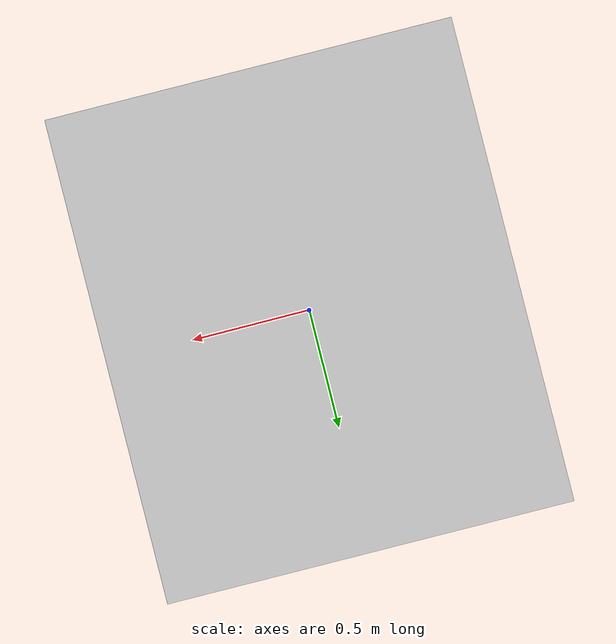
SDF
<?xml version="1.0" ?>
<sdf version="1.8">
  <world name="world_model">

    <physics name="1ms" type="ignored">
      <max_step_size>0.001</max_step_size>
      <real_time_factor>1.0</real_time_factor>
    </physics>
    <plugin
      filename="ignition-gazebo-physics-system"
      name="gz::sim::systems::Physics">
    </plugin>
    <plugin
      filename="ignition-gazebo-user-commands-system"
      name="gz::sim::systems::UserCommands">
    </plugin>
    <plugin
      filename="libignition-gazebo-sensors-system.so"
      name="ignition::gazebo::systems::Sensors">
      <render_engine>ogre2</render_engine>
    </plugin>
    <plugin
      filename="ignition-gazebo-scene-broadcaster-system"
      name="gz::sim::systems::SceneBroadcaster">
    </plugin>

    <plugin filename="gz-sim-imu-system"
      name="gz::sim::systems::Imu">
    </plugin>

    <light type="directional" name="sun">
      <cast_shadows>false</cast_shadows>
      <pose>0 0 10 0 0 0</pose>
      <diffuse>0.8 0.8 0.8 1</diffuse>
      <specular>0.2 0.2 0.2 1</specular>
      <attenuation>
        <range>1000</range>
        <constant>0.9</constant>
        <linear>0.01</linear>
        <quadratic>0.001</quadratic>
      </attenuation>
      <direction>-0.5 0.1 -0.9</direction>
    </light>

    <include>
      <pose>0 0 0 1.5708 0 0</pose>
      <uri>package://gemelo_digital_puzzlebot/worlds/model.sdf</uri>
    </include>

  </world>
</sdf>

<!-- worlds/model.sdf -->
<sdf version="1.6">
  <model name="pista_puzzlebot">
    <static>true</static>
    <link name="link_pista">
      <!-- Posición inicial en el mundo (X Y Z Roll Pitch Yaw) -->
      <pose>0 0 0 0 0 0</pose>

      <!-- Colisión: Define la superficie física para que el PuzzleBot no traspase el suelo -->
      <collision name="collision_pista">
        <geometry>
          <mesh>
            <!-- Si usaste .obj, cambia la extensión a .obj abajo -->
            <uri>package://gemelo_digital_puzzlebot/meshes/Mapa_puzzlebot.obj</uri>
            <scale>1 1 1</scale>
          </mesh>
        </geometry>
        <surface>
          <friction>
            <ode>
              <!-- Coeficientes de fricción para que las llantas del robot tengan agarre -->
              <mu>1.0</mu>
              <mu2>1.0</mu2>
            </ode>
          </friction>
        </surface>
      </collision>

      <!-- Visual: Lo que la cámara del PuzzleBot y tú verán en la pantalla -->
      <visual name="visual_pista">
        <geometry>
          <mesh>
            <!-- Si usaste .obj, cambia la extensión a .obj abajo -->
            <uri>package://gemelo_digital_puzzlebot/meshes/Mapa_puzzlebot.obj</uri>
            <scale>1 1 1</scale>
          </mesh>
        </geometry>
        <!-- Gazebo usará los materiales y texturas vinculados en tu archivo 3D -->
      </visual>
    </link>
  </model>
</sdf>
